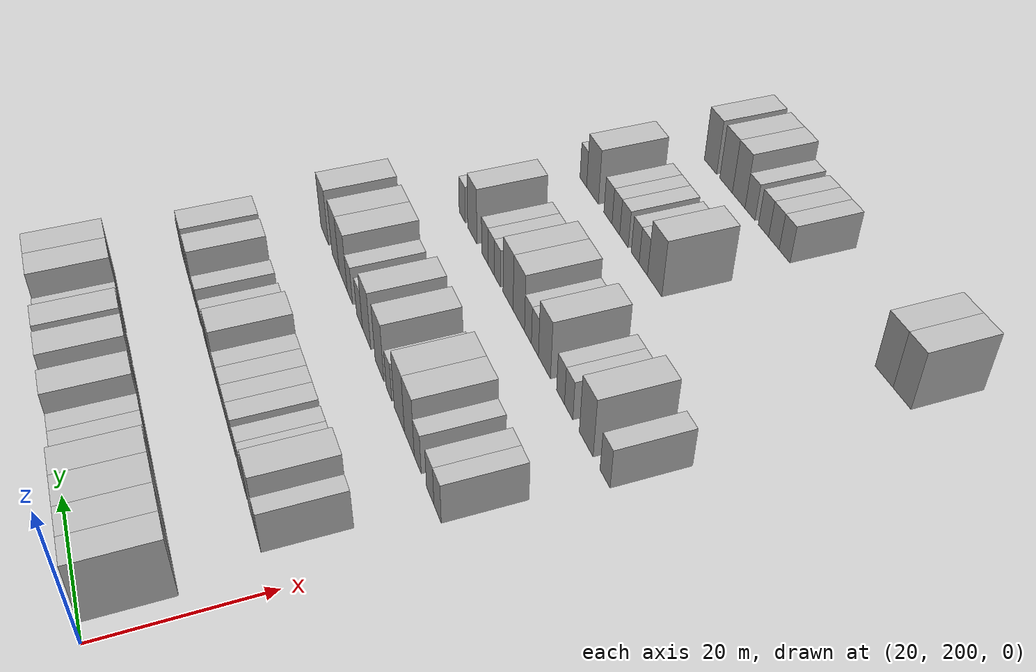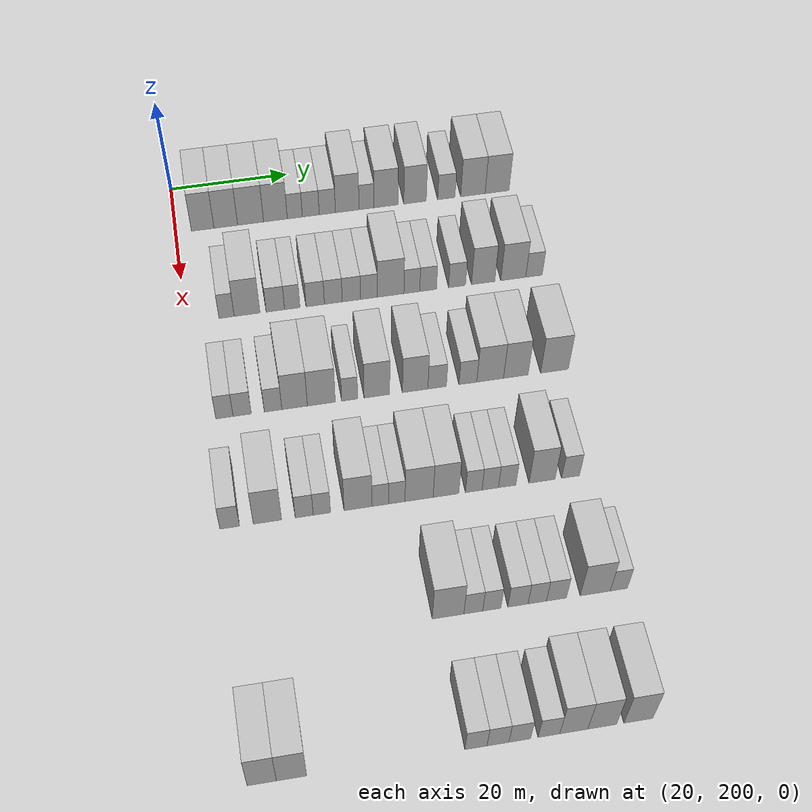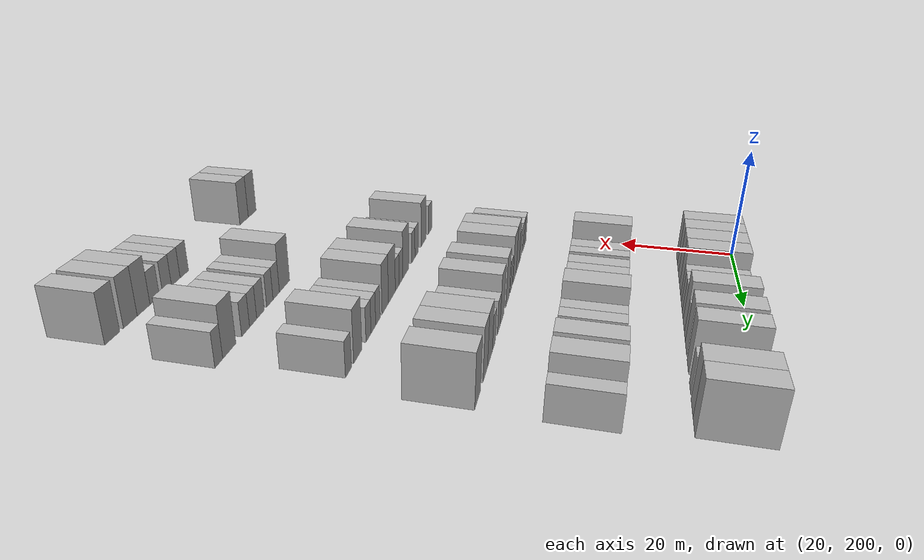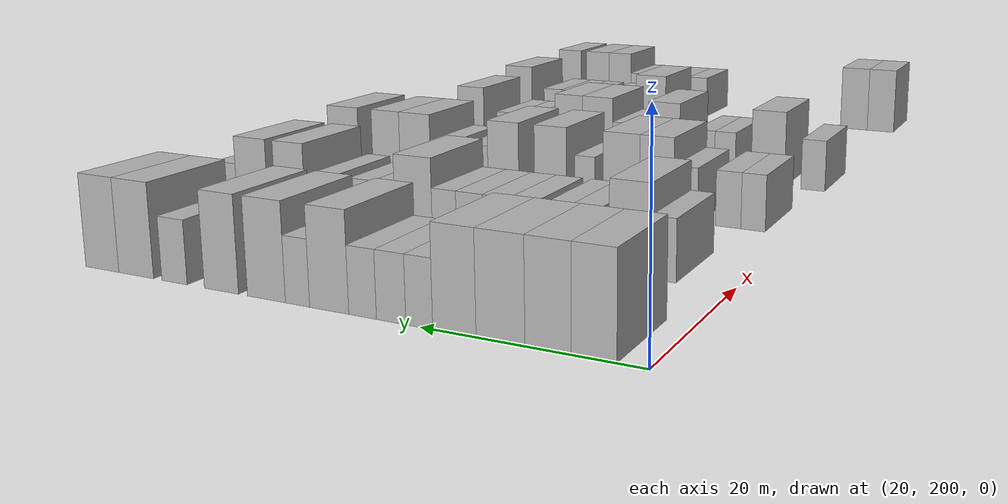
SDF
<sdf version="1.6">
 <world name="default">
  <model name="building_127">
   <static>1</static>
   <pose>25.0000 204.5269 0 0.000000 0.000000 0.000000</pose>
   <link name="link">
    <pose>0 0 4.50 0 0 0</pose>
    <collision name="collision"><geometry><box><size>10.0000 3.7907 9.0000</size></box></geometry></collision>
    <visual name="visual">
     <cast_shadows>0</cast_shadows>
     <geometry><box><size>10.0000 3.7907 9.0000</size></box></geometry>
     <material>
      <script>
       <uri>model://HANNAS_wall/materials/scripts</uri>
       <uri>model://HANNAS_wall/materials/textures</uri>
       <name>vrc/HANNAS_wall</name>
      </script>
     </material>
    </visual>
   </link>
  </model>
  <model name="building_128">
   <static>1</static>
   <pose>25.0000 208.4169 0 0.000000 0.000000 0.000000</pose>
   <link name="link">
    <pose>0 0 4.50 0 0 0</pose>
    <collision name="collision"><geometry><box><size>10.0000 3.9894 9.0000</size></box></geometry></collision>
    <visual name="visual">
     <cast_shadows>0</cast_shadows>
     <geometry><box><size>10.0000 3.9894 9.0000</size></box></geometry>
     <material>
      <script>
       <uri>model://HANNAS_wall/materials/scripts</uri>
       <uri>model://HANNAS_wall/materials/textures</uri>
       <name>vrc/HANNAS_wall</name>
      </script>
     </material>
    </visual>
   </link>
  </model>
  <model name="building_129">
   <static>1</static>
   <pose>25.0000 212.6016 0 0.000000 0.000000 0.000000</pose>
   <link name="link">
    <pose>0 0 4.50 0 0 0</pose>
    <collision name="collision"><geometry><box><size>10.0000 4.3799 9.0000</size></box></geometry></collision>
    <visual name="visual">
     <cast_shadows>0</cast_shadows>
     <geometry><box><size>10.0000 4.3799 9.0000</size></box></geometry>
     <material>
      <script>
       <uri>model://HANNAS_wall/materials/scripts</uri>
       <uri>model://HANNAS_wall/materials/textures</uri>
       <name>vrc/HANNAS_wall</name>
      </script>
     </material>
    </visual>
   </link>
  </model>
  <model name="building_130">
   <static>1</static>
   <pose>25.0000 216.8024 0 0.000000 0.000000 0.000000</pose>
   <link name="link">
    <pose>0 0 4.50 0 0 0</pose>
    <collision name="collision"><geometry><box><size>10.0000 4.0217 9.0000</size></box></geometry></collision>
    <visual name="visual">
     <cast_shadows>0</cast_shadows>
     <geometry><box><size>10.0000 4.0217 9.0000</size></box></geometry>
     <material>
      <script>
       <uri>model://HANNAS_wall/materials/scripts</uri>
       <uri>model://HANNAS_wall/materials/textures</uri>
       <name>vrc/HANNAS_wall</name>
      </script>
     </material>
    </visual>
   </link>
  </model>
  <model name="building_131">
   <static>1</static>
   <pose>25.0000 220.0942 0 0.000000 0.000000 0.000000</pose>
   <link name="link">
    <pose>0 0 3.00 0 0 0</pose>
    <collision name="collision"><geometry><box><size>10.0000 2.5620 6.0000</size></box></geometry></collision>
    <visual name="visual">
     <cast_shadows>0</cast_shadows>
     <geometry><box><size>10.0000 2.5620 6.0000</size></box></geometry>
     <material>
      <script>
       <uri>model://HANNAS_wall/materials/scripts</uri>
       <uri>model://HANNAS_wall/materials/textures</uri>
       <name>vrc/HANNAS_wall</name>
      </script>
     </material>
    </visual>
   </link>
  </model>
  <model name="building_132">
   <static>1</static>
   <pose>25.0000 222.8165 0 0.000000 0.000000 0.000000</pose>
   <link name="link">
    <pose>0 0 3.00 0 0 0</pose>
    <collision name="collision"><geometry><box><size>10.0000 2.8825 6.0000</size></box></geometry></collision>
    <visual name="visual">
     <cast_shadows>0</cast_shadows>
     <geometry><box><size>10.0000 2.8825 6.0000</size></box></geometry>
     <material>
      <script>
       <uri>model://HANNAS_wall/materials/scripts</uri>
       <uri>model://HANNAS_wall/materials/textures</uri>
       <name>vrc/HANNAS_wall</name>
      </script>
     </material>
    </visual>
   </link>
  </model>
  <model name="building_133">
   <static>1</static>
   <pose>25.0000 225.6451 0 0.000000 0.000000 0.000000</pose>
   <link name="link">
    <pose>0 0 3.00 0 0 0</pose>
    <collision name="collision"><geometry><box><size>10.0000 2.7747 6.0000</size></box></geometry></collision>
    <visual name="visual">
     <cast_shadows>0</cast_shadows>
     <geometry><box><size>10.0000 2.7747 6.0000</size></box></geometry>
     <material>
      <script>
       <uri>model://HANNAS_wall/materials/scripts</uri>
       <uri>model://HANNAS_wall/materials/textures</uri>
       <name>vrc/HANNAS_wall</name>
      </script>
     </material>
    </visual>
   </link>
  </model>
  <model name="building_134">
   <static>1</static>
   <pose>25.0000 229.0495 0 0.000000 0.000000 0.000000</pose>
   <link name="link">
    <pose>0 0 4.50 0 0 0</pose>
    <collision name="collision"><geometry><box><size>10.0000 4.0341 9.0000</size></box></geometry></collision>
    <visual name="visual">
     <cast_shadows>0</cast_shadows>
     <geometry><box><size>10.0000 4.0341 9.0000</size></box></geometry>
     <material>
      <script>
       <uri>model://HANNAS_wall/materials/scripts</uri>
       <uri>model://HANNAS_wall/materials/textures</uri>
       <name>vrc/HANNAS_wall</name>
      </script>
     </material>
    </visual>
   </link>
  </model>
  <model name="building_135">
   <static>1</static>
   <pose>25.0000 232.3501 0 0.000000 0.000000 0.000000</pose>
   <link name="link">
    <pose>0 0 3.00 0 0 0</pose>
    <collision name="collision"><geometry><box><size>10.0000 2.5670 6.0000</size></box></geometry></collision>
    <visual name="visual">
     <cast_shadows>0</cast_shadows>
     <geometry><box><size>10.0000 2.5670 6.0000</size></box></geometry>
     <material>
      <script>
       <uri>model://HANNAS_wall/materials/scripts</uri>
       <uri>model://HANNAS_wall/materials/textures</uri>
       <name>vrc/HANNAS_wall</name>
      </script>
     </material>
    </visual>
   </link>
  </model>
  <model name="building_136">
   <static>1</static>
   <pose>25.0000 235.6982 0 0.000000 0.000000 0.000000</pose>
   <link name="link">
    <pose>0 0 4.50 0 0 0</pose>
    <collision name="collision"><geometry><box><size>10.0000 4.1291 9.0000</size></box></geometry></collision>
    <visual name="visual">
     <cast_shadows>0</cast_shadows>
     <geometry><box><size>10.0000 4.1291 9.0000</size></box></geometry>
     <material>
      <script>
       <uri>model://HANNAS_wall/materials/scripts</uri>
       <uri>model://HANNAS_wall/materials/textures</uri>
       <name>vrc/HANNAS_wall</name>
      </script>
     </material>
    </visual>
   </link>
  </model>
  <model name="building_137">
   <static>1</static>
   <pose>25.0000 240.7015 0 0.000000 0.000000 0.000000</pose>
   <link name="link">
    <pose>0 0 4.50 0 0 0</pose>
    <collision name="collision"><geometry><box><size>10.0000 3.8776 9.0000</size></box></geometry></collision>
    <visual name="visual">
     <cast_shadows>0</cast_shadows>
     <geometry><box><size>10.0000 3.8776 9.0000</size></box></geometry>
     <material>
      <script>
       <uri>model://HANNAS_wall/materials/scripts</uri>
       <uri>model://HANNAS_wall/materials/textures</uri>
       <name>vrc/HANNAS_wall</name>
      </script>
     </material>
    </visual>
   </link>
  </model>
  <model name="building_138">
   <static>1</static>
   <pose>25.0000 246.1379 0 0.000000 0.000000 0.000000</pose>
   <link name="link">
    <pose>0 0 3.00 0 0 0</pose>
    <collision name="collision"><geometry><box><size>10.0000 2.9952 6.0000</size></box></geometry></collision>
    <visual name="visual">
     <cast_shadows>0</cast_shadows>
     <geometry><box><size>10.0000 2.9952 6.0000</size></box></geometry>
     <material>
      <script>
       <uri>model://HANNAS_wall/materials/scripts</uri>
       <uri>model://HANNAS_wall/materials/textures</uri>
       <name>vrc/HANNAS_wall</name>
      </script>
     </material>
    </visual>
   </link>
  </model>
  <model name="building_139">
   <static>1</static>
   <pose>25.0000 250.7669 0 0.000000 0.000000 0.000000</pose>
   <link name="link">
    <pose>0 0 4.50 0 0 0</pose>
    <collision name="collision"><geometry><box><size>10.0000 4.2628 9.0000</size></box></geometry></collision>
    <visual name="visual">
     <cast_shadows>0</cast_shadows>
     <geometry><box><size>10.0000 4.2628 9.0000</size></box></geometry>
     <material>
      <script>
       <uri>model://HANNAS_wall/materials/scripts</uri>
       <uri>model://HANNAS_wall/materials/textures</uri>
       <name>vrc/HANNAS_wall</name>
      </script>
     </material>
    </visual>
   </link>
  </model>
  <model name="building_140">
   <static>1</static>
   <pose>25.0000 254.9841 0 0.000000 0.000000 0.000000</pose>
   <link name="link">
    <pose>0 0 4.50 0 0 0</pose>
    <collision name="collision"><geometry><box><size>10.0000 4.1716 9.0000</size></box></geometry></collision>
    <visual name="visual">
     <cast_shadows>0</cast_shadows>
     <geometry><box><size>10.0000 4.1716 9.0000</size></box></geometry>
     <material>
      <script>
       <uri>model://HANNAS_wall/materials/scripts</uri>
       <uri>model://HANNAS_wall/materials/textures</uri>
       <name>vrc/HANNAS_wall</name>
      </script>
     </material>
    </visual>
   </link>
  </model>
  <model name="building_295">
   <static>1</static>
   <pose>44.0000 206.5396 0 0.000000 0.000000 0.000000</pose>
   <link name="link">
    <pose>0 0 3.00 0 0 0</pose>
    <collision name="collision"><geometry><box><size>10.0000 2.4375 6.0000</size></box></geometry></collision>
    <visual name="visual">
     <cast_shadows>0</cast_shadows>
     <geometry><box><size>10.0000 2.4375 6.0000</size></box></geometry>
     <material>
      <script>
       <uri>model://HANNAS_wall/materials/scripts</uri>
       <uri>model://HANNAS_wall/materials/textures</uri>
       <name>vrc/HANNAS_wall</name>
      </script>
     </material>
    </visual>
   </link>
  </model>
  <model name="building_296">
   <static>1</static>
   <pose>44.0000 209.8361 0 0.000000 0.000000 0.000000</pose>
   <link name="link">
    <pose>0 0 4.50 0 0 0</pose>
    <collision name="collision"><geometry><box><size>10.0000 4.1556 9.0000</size></box></geometry></collision>
    <visual name="visual">
     <cast_shadows>0</cast_shadows>
     <geometry><box><size>10.0000 4.1556 9.0000</size></box></geometry>
     <material>
      <script>
       <uri>model://HANNAS_wall/materials/scripts</uri>
       <uri>model://HANNAS_wall/materials/textures</uri>
       <name>vrc/HANNAS_wall</name>
      </script>
     </material>
    </visual>
   </link>
  </model>
  <model name="building_297">
   <static>1</static>
   <pose>44.0000 214.4067 0 0.000000 0.000000 0.000000</pose>
   <link name="link">
    <pose>0 0 3.00 0 0 0</pose>
    <collision name="collision"><geometry><box><size>10.0000 2.9856 6.0000</size></box></geometry></collision>
    <visual name="visual">
     <cast_shadows>0</cast_shadows>
     <geometry><box><size>10.0000 2.9856 6.0000</size></box></geometry>
     <material>
      <script>
       <uri>model://HANNAS_wall/materials/scripts</uri>
       <uri>model://HANNAS_wall/materials/textures</uri>
       <name>vrc/HANNAS_wall</name>
      </script>
     </material>
    </visual>
   </link>
  </model>
  <model name="building_298">
   <static>1</static>
   <pose>44.0000 217.1404 0 0.000000 0.000000 0.000000</pose>
   <link name="link">
    <pose>0 0 3.00 0 0 0</pose>
    <collision name="collision"><geometry><box><size>10.0000 2.4819 6.0000</size></box></geometry></collision>
    <visual name="visual">
     <cast_shadows>0</cast_shadows>
     <geometry><box><size>10.0000 2.4819 6.0000</size></box></geometry>
     <material>
      <script>
       <uri>model://HANNAS_wall/materials/scripts</uri>
       <uri>model://HANNAS_wall/materials/textures</uri>
       <name>vrc/HANNAS_wall</name>
      </script>
     </material>
    </visual>
   </link>
  </model>
  <model name="building_299">
   <static>1</static>
   <pose>44.0000 220.8739 0 0.000000 0.000000 0.000000</pose>
   <link name="link">
    <pose>0 0 3.00 0 0 0</pose>
    <collision name="collision"><geometry><box><size>10.0000 2.9849 6.0000</size></box></geometry></collision>
    <visual name="visual">
     <cast_shadows>0</cast_shadows>
     <geometry><box><size>10.0000 2.9849 6.0000</size></box></geometry>
     <material>
      <script>
       <uri>model://HANNAS_wall/materials/scripts</uri>
       <uri>model://HANNAS_wall/materials/textures</uri>
       <name>vrc/HANNAS_wall</name>
      </script>
     </material>
    </visual>
   </link>
  </model>
  <model name="building_300">
   <static>1</static>
   <pose>44.0000 223.8195 0 0.000000 0.000000 0.000000</pose>
   <link name="link">
    <pose>0 0 3.00 0 0 0</pose>
    <collision name="collision"><geometry><box><size>10.0000 2.9063 6.0000</size></box></geometry></collision>
    <visual name="visual">
     <cast_shadows>0</cast_shadows>
     <geometry><box><size>10.0000 2.9063 6.0000</size></box></geometry>
     <material>
      <script>
       <uri>model://HANNAS_wall/materials/scripts</uri>
       <uri>model://HANNAS_wall/materials/textures</uri>
       <name>vrc/HANNAS_wall</name>
      </script>
     </material>
    </visual>
   </link>
  </model>
  <model name="building_301">
   <static>1</static>
   <pose>44.0000 226.7684 0 0.000000 0.000000 0.000000</pose>
   <link name="link">
    <pose>0 0 3.00 0 0 0</pose>
    <collision name="collision"><geometry><box><size>10.0000 2.9915 6.0000</size></box></geometry></collision>
    <visual name="visual">
     <cast_shadows>0</cast_shadows>
     <geometry><box><size>10.0000 2.9915 6.0000</size></box></geometry>
     <material>
      <script>
       <uri>model://HANNAS_wall/materials/scripts</uri>
       <uri>model://HANNAS_wall/materials/textures</uri>
       <name>vrc/HANNAS_wall</name>
      </script>
     </material>
    </visual>
   </link>
  </model>
  <model name="building_302">
   <static>1</static>
   <pose>44.0000 229.6491 0 0.000000 0.000000 0.000000</pose>
   <link name="link">
    <pose>0 0 3.00 0 0 0</pose>
    <collision name="collision"><geometry><box><size>10.0000 2.7698 6.0000</size></box></geometry></collision>
    <visual name="visual">
     <cast_shadows>0</cast_shadows>
     <geometry><box><size>10.0000 2.7698 6.0000</size></box></geometry>
     <material>
      <script>
       <uri>model://HANNAS_wall/materials/scripts</uri>
       <uri>model://HANNAS_wall/materials/textures</uri>
       <name>vrc/HANNAS_wall</name>
      </script>
     </material>
    </visual>
   </link>
  </model>
  <model name="building_303">
   <static>1</static>
   <pose>44.0000 233.2140 0 0.000000 0.000000 0.000000</pose>
   <link name="link">
    <pose>0 0 4.50 0 0 0</pose>
    <collision name="collision"><geometry><box><size>10.0000 4.3600 9.0000</size></box></geometry></collision>
    <visual name="visual">
     <cast_shadows>0</cast_shadows>
     <geometry><box><size>10.0000 4.3600 9.0000</size></box></geometry>
     <material>
      <script>
       <uri>model://HANNAS_wall/materials/scripts</uri>
       <uri>model://HANNAS_wall/materials/textures</uri>
       <name>vrc/HANNAS_wall</name>
      </script>
     </material>
    </visual>
   </link>
  </model>
  <model name="building_304">
   <static>1</static>
   <pose>44.0000 236.6970 0 0.000000 0.000000 0.000000</pose>
   <link name="link">
    <pose>0 0 3.00 0 0 0</pose>
    <collision name="collision"><geometry><box><size>10.0000 2.6061 6.0000</size></box></geometry></collision>
    <visual name="visual">
     <cast_shadows>0</cast_shadows>
     <geometry><box><size>10.0000 2.6061 6.0000</size></box></geometry>
     <material>
      <script>
       <uri>model://HANNAS_wall/materials/scripts</uri>
       <uri>model://HANNAS_wall/materials/textures</uri>
       <name>vrc/HANNAS_wall</name>
      </script>
     </material>
    </visual>
   </link>
  </model>
  <model name="building_305">
   <static>1</static>
   <pose>44.0000 239.3837 0 0.000000 0.000000 0.000000</pose>
   <link name="link">
    <pose>0 0 3.00 0 0 0</pose>
    <collision name="collision"><geometry><box><size>10.0000 2.7674 6.0000</size></box></geometry></collision>
    <visual name="visual">
     <cast_shadows>0</cast_shadows>
     <geometry><box><size>10.0000 2.7674 6.0000</size></box></geometry>
     <material>
      <script>
       <uri>model://HANNAS_wall/materials/scripts</uri>
       <uri>model://HANNAS_wall/materials/textures</uri>
       <name>vrc/HANNAS_wall</name>
      </script>
     </material>
    </visual>
   </link>
  </model>
  <model name="building_306">
   <static>1</static>
   <pose>44.0000 244.1708 0 0.000000 0.000000 0.000000</pose>
   <link name="link">
    <pose>0 0 3.00 0 0 0</pose>
    <collision name="collision"><geometry><box><size>10.0000 2.8068 6.0000</size></box></geometry></collision>
    <visual name="visual">
     <cast_shadows>0</cast_shadows>
     <geometry><box><size>10.0000 2.8068 6.0000</size></box></geometry>
     <material>
      <script>
       <uri>model://HANNAS_wall/materials/scripts</uri>
       <uri>model://HANNAS_wall/materials/textures</uri>
       <name>vrc/HANNAS_wall</name>
      </script>
     </material>
    </visual>
   </link>
  </model>
  <model name="building_307">
   <static>1</static>
   <pose>44.0000 248.5184 0 0.000000 0.000000 0.000000</pose>
   <link name="link">
    <pose>0 0 4.50 0 0 0</pose>
    <collision name="collision"><geometry><box><size>10.0000 3.8883 9.0000</size></box></geometry></collision>
    <visual name="visual">
     <cast_shadows>0</cast_shadows>
     <geometry><box><size>10.0000 3.8883 9.0000</size></box></geometry>
     <material>
      <script>
       <uri>model://HANNAS_wall/materials/scripts</uri>
       <uri>model://HANNAS_wall/materials/textures</uri>
       <name>vrc/HANNAS_wall</name>
      </script>
     </material>
    </visual>
   </link>
  </model>
  <model name="building_308">
   <static>1</static>
   <pose>44.0000 253.5463 0 0.000000 0.000000 0.000000</pose>
   <link name="link">
    <pose>0 0 4.50 0 0 0</pose>
    <collision name="collision"><geometry><box><size>10.0000 4.1676 9.0000</size></box></geometry></collision>
    <visual name="visual">
     <cast_shadows>0</cast_shadows>
     <geometry><box><size>10.0000 4.1676 9.0000</size></box></geometry>
     <material>
      <script>
       <uri>model://HANNAS_wall/materials/scripts</uri>
       <uri>model://HANNAS_wall/materials/textures</uri>
       <name>vrc/HANNAS_wall</name>
      </script>
     </material>
    </visual>
   </link>
  </model>
  <model name="building_309">
   <static>1</static>
   <pose>44.0000 257.0165 0 0.000000 0.000000 0.000000</pose>
   <link name="link">
    <pose>0 0 3.00 0 0 0</pose>
    <collision name="collision"><geometry><box><size>10.0000 2.7727 6.0000</size></box></geometry></collision>
    <visual name="visual">
     <cast_shadows>0</cast_shadows>
     <geometry><box><size>10.0000 2.7727 6.0000</size></box></geometry>
     <material>
      <script>
       <uri>model://HANNAS_wall/materials/scripts</uri>
       <uri>model://HANNAS_wall/materials/textures</uri>
       <name>vrc/HANNAS_wall</name>
      </script>
     </material>
    </visual>
   </link>
  </model>
  <model name="building_470">
   <static>1</static>
   <pose>63.0000 204.2119 0 0.000000 0.000000 0.000000</pose>
   <link name="link">
    <pose>0 0 3.00 0 0 0</pose>
    <collision name="collision"><geometry><box><size>10.0000 2.6369 6.0000</size></box></geometry></collision>
    <visual name="visual">
     <cast_shadows>0</cast_shadows>
     <geometry><box><size>10.0000 2.6369 6.0000</size></box></geometry>
     <material>
      <script>
       <uri>model://HANNAS_wall/materials/scripts</uri>
       <uri>model://HANNAS_wall/materials/textures</uri>
       <name>vrc/HANNAS_wall</name>
      </script>
     </material>
    </visual>
   </link>
  </model>
  <model name="building_471">
   <static>1</static>
   <pose>63.0000 206.9260 0 0.000000 0.000000 0.000000</pose>
   <link name="link">
    <pose>0 0 3.00 0 0 0</pose>
    <collision name="collision"><geometry><box><size>10.0000 2.7912 6.0000</size></box></geometry></collision>
    <visual name="visual">
     <cast_shadows>0</cast_shadows>
     <geometry><box><size>10.0000 2.7912 6.0000</size></box></geometry>
     <material>
      <script>
       <uri>model://HANNAS_wall/materials/scripts</uri>
       <uri>model://HANNAS_wall/materials/textures</uri>
       <name>vrc/HANNAS_wall</name>
      </script>
     </material>
    </visual>
   </link>
  </model>
  <model name="building_472">
   <static>1</static>
   <pose>63.0000 211.6687 0 0.000000 0.000000 0.000000</pose>
   <link name="link">
    <pose>0 0 3.00 0 0 0</pose>
    <collision name="collision"><geometry><box><size>10.0000 2.6942 6.0000</size></box></geometry></collision>
    <visual name="visual">
     <cast_shadows>0</cast_shadows>
     <geometry><box><size>10.0000 2.6942 6.0000</size></box></geometry>
     <material>
      <script>
       <uri>model://HANNAS_wall/materials/scripts</uri>
       <uri>model://HANNAS_wall/materials/textures</uri>
       <name>vrc/HANNAS_wall</name>
      </script>
     </material>
    </visual>
   </link>
  </model>
  <model name="building_473">
   <static>1</static>
   <pose>63.0000 214.9931 0 0.000000 0.000000 0.000000</pose>
   <link name="link">
    <pose>0 0 4.50 0 0 0</pose>
    <collision name="collision"><geometry><box><size>10.0000 3.9545 9.0000</size></box></geometry></collision>
    <visual name="visual">
     <cast_shadows>0</cast_shadows>
     <geometry><box><size>10.0000 3.9545 9.0000</size></box></geometry>
     <material>
      <script>
       <uri>model://HANNAS_wall/materials/scripts</uri>
       <uri>model://HANNAS_wall/materials/textures</uri>
       <name>vrc/HANNAS_wall</name>
      </script>
     </material>
    </visual>
   </link>
  </model>
  <model name="building_474">
   <static>1</static>
   <pose>63.0000 219.1240 0 0.000000 0.000000 0.000000</pose>
   <link name="link">
    <pose>0 0 4.50 0 0 0</pose>
    <collision name="collision"><geometry><box><size>10.0000 4.3075 9.0000</size></box></geometry></collision>
    <visual name="visual">
     <cast_shadows>0</cast_shadows>
     <geometry><box><size>10.0000 4.3075 9.0000</size></box></geometry>
     <material>
      <script>
       <uri>model://HANNAS_wall/materials/scripts</uri>
       <uri>model://HANNAS_wall/materials/textures</uri>
       <name>vrc/HANNAS_wall</name>
      </script>
     </material>
    </visual>
   </link>
  </model>
  <model name="building_475">
   <static>1</static>
   <pose>63.0000 223.5188 0 0.000000 0.000000 0.000000</pose>
   <link name="link">
    <pose>0 0 3.00 0 0 0</pose>
    <collision name="collision"><geometry><box><size>10.0000 2.4821 6.0000</size></box></geometry></collision>
    <visual name="visual">
     <cast_shadows>0</cast_shadows>
     <geometry><box><size>10.0000 2.4821 6.0000</size></box></geometry>
     <material>
      <script>
       <uri>model://HANNAS_wall/materials/scripts</uri>
       <uri>model://HANNAS_wall/materials/textures</uri>
       <name>vrc/HANNAS_wall</name>
      </script>
     </material>
    </visual>
   </link>
  </model>
  <model name="building_476">
   <static>1</static>
   <pose>63.0000 227.7559 0 0.000000 0.000000 0.000000</pose>
   <link name="link">
    <pose>0 0 4.50 0 0 0</pose>
    <collision name="collision"><geometry><box><size>10.0000 3.9920 9.0000</size></box></geometry></collision>
    <visual name="visual">
     <cast_shadows>0</cast_shadows>
     <geometry><box><size>10.0000 3.9920 9.0000</size></box></geometry>
     <material>
      <script>
       <uri>model://HANNAS_wall/materials/scripts</uri>
       <uri>model://HANNAS_wall/materials/textures</uri>
       <name>vrc/HANNAS_wall</name>
      </script>
     </material>
    </visual>
   </link>
  </model>
  <model name="building_477">
   <static>1</static>
   <pose>63.0000 233.7527 0 0.000000 0.000000 0.000000</pose>
   <link name="link">
    <pose>0 0 4.50 0 0 0</pose>
    <collision name="collision"><geometry><box><size>10.0000 4.0016 9.0000</size></box></geometry></collision>
    <visual name="visual">
     <cast_shadows>0</cast_shadows>
     <geometry><box><size>10.0000 4.0016 9.0000</size></box></geometry>
     <material>
      <script>
       <uri>model://HANNAS_wall/materials/scripts</uri>
       <uri>model://HANNAS_wall/materials/textures</uri>
       <name>vrc/HANNAS_wall</name>
      </script>
     </material>
    </visual>
   </link>
  </model>
  <model name="building_478">
   <static>1</static>
   <pose>63.0000 237.2068 0 0.000000 0.000000 0.000000</pose>
   <link name="link">
    <pose>0 0 3.00 0 0 0</pose>
    <collision name="collision"><geometry><box><size>10.0000 2.9066 6.0000</size></box></geometry></collision>
    <visual name="visual">
     <cast_shadows>0</cast_shadows>
     <geometry><box><size>10.0000 2.9066 6.0000</size></box></geometry>
     <material>
      <script>
       <uri>model://HANNAS_wall/materials/scripts</uri>
       <uri>model://HANNAS_wall/materials/textures</uri>
       <name>vrc/HANNAS_wall</name>
      </script>
     </material>
    </visual>
   </link>
  </model>
  <model name="building_479">
   <static>1</static>
   <pose>63.0000 242.0679 0 0.000000 0.000000 0.000000</pose>
   <link name="link">
    <pose>0 0 3.00 0 0 0</pose>
    <collision name="collision"><geometry><box><size>10.0000 2.8156 6.0000</size></box></geometry></collision>
    <visual name="visual">
     <cast_shadows>0</cast_shadows>
     <geometry><box><size>10.0000 2.8156 6.0000</size></box></geometry>
     <material>
      <script>
       <uri>model://HANNAS_wall/materials/scripts</uri>
       <uri>model://HANNAS_wall/materials/textures</uri>
       <name>vrc/HANNAS_wall</name>
      </script>
     </material>
    </visual>
   </link>
  </model>
  <model name="building_480">
   <static>1</static>
   <pose>63.0000 245.5967 0 0.000000 0.000000 0.000000</pose>
   <link name="link">
    <pose>0 0 4.50 0 0 0</pose>
    <collision name="collision"><geometry><box><size>10.0000 4.2419 9.0000</size></box></geometry></collision>
    <visual name="visual">
     <cast_shadows>0</cast_shadows>
     <geometry><box><size>10.0000 4.2419 9.0000</size></box></geometry>
     <material>
      <script>
       <uri>model://HANNAS_wall/materials/scripts</uri>
       <uri>model://HANNAS_wall/materials/textures</uri>
       <name>vrc/HANNAS_wall</name>
      </script>
     </material>
    </visual>
   </link>
  </model>
  <model name="building_481">
   <static>1</static>
   <pose>63.0000 249.6696 0 0.000000 0.000000 0.000000</pose>
   <link name="link">
    <pose>0 0 4.50 0 0 0</pose>
    <collision name="collision"><geometry><box><size>10.0000 3.9040 9.0000</size></box></geometry></collision>
    <visual name="visual">
     <cast_shadows>0</cast_shadows>
     <geometry><box><size>10.0000 3.9040 9.0000</size></box></geometry>
     <material>
      <script>
       <uri>model://HANNAS_wall/materials/scripts</uri>
       <uri>model://HANNAS_wall/materials/textures</uri>
       <name>vrc/HANNAS_wall</name>
      </script>
     </material>
    </visual>
   </link>
  </model>
  <model name="building_482">
   <static>1</static>
   <pose>63.0000 255.8370 0 0.000000 0.000000 0.000000</pose>
   <link name="link">
    <pose>0 0 4.50 0 0 0</pose>
    <collision name="collision"><geometry><box><size>10.0000 4.4309 9.0000</size></box></geometry></collision>
    <visual name="visual">
     <cast_shadows>0</cast_shadows>
     <geometry><box><size>10.0000 4.4309 9.0000</size></box></geometry>
     <material>
      <script>
       <uri>model://HANNAS_wall/materials/scripts</uri>
       <uri>model://HANNAS_wall/materials/textures</uri>
       <name>vrc/HANNAS_wall</name>
      </script>
     </material>
    </visual>
   </link>
  </model>
  <model name="building_650">
   <static>1</static>
   <pose>82.0000 202.9773 0 0.000000 0.000000 0.000000</pose>
   <link name="link">
    <pose>0 0 3.00 0 0 0</pose>
    <collision name="collision"><geometry><box><size>10.0000 2.8627 6.0000</size></box></geometry></collision>
    <visual name="visual">
     <cast_shadows>0</cast_shadows>
     <geometry><box><size>10.0000 2.8627 6.0000</size></box></geometry>
     <material>
      <script>
       <uri>model://HANNAS_wall/materials/scripts</uri>
       <uri>model://HANNAS_wall/materials/textures</uri>
       <name>vrc/HANNAS_wall</name>
      </script>
     </material>
    </visual>
   </link>
  </model>
  <model name="building_651">
   <static>1</static>
   <pose>82.0000 208.4746 0 0.000000 0.000000 0.000000</pose>
   <link name="link">
    <pose>0 0 4.50 0 0 0</pose>
    <collision name="collision"><geometry><box><size>10.0000 4.1319 9.0000</size></box></geometry></collision>
    <visual name="visual">
     <cast_shadows>0</cast_shadows>
     <geometry><box><size>10.0000 4.1319 9.0000</size></box></geometry>
     <material>
      <script>
       <uri>model://HANNAS_wall/materials/scripts</uri>
       <uri>model://HANNAS_wall/materials/textures</uri>
       <name>vrc/HANNAS_wall</name>
      </script>
     </material>
    </visual>
   </link>
  </model>
  <model name="building_652">
   <static>1</static>
   <pose>82.0000 213.8582 0 0.000000 0.000000 0.000000</pose>
   <link name="link">
    <pose>0 0 3.00 0 0 0</pose>
    <collision name="collision"><geometry><box><size>10.0000 2.6354 6.0000</size></box></geometry></collision>
    <visual name="visual">
     <cast_shadows>0</cast_shadows>
     <geometry><box><size>10.0000 2.6354 6.0000</size></box></geometry>
     <material>
      <script>
       <uri>model://HANNAS_wall/materials/scripts</uri>
       <uri>model://HANNAS_wall/materials/textures</uri>
       <name>vrc/HANNAS_wall</name>
      </script>
     </material>
    </visual>
   </link>
  </model>
  <model name="building_653">
   <static>1</static>
   <pose>82.0000 216.4502 0 0.000000 0.000000 0.000000</pose>
   <link name="link">
    <pose>0 0 3.00 0 0 0</pose>
    <collision name="collision"><geometry><box><size>10.0000 2.5486 6.0000</size></box></geometry></collision>
    <visual name="visual">
     <cast_shadows>0</cast_shadows>
     <geometry><box><size>10.0000 2.5486 6.0000</size></box></geometry>
     <material>
      <script>
       <uri>model://HANNAS_wall/materials/scripts</uri>
       <uri>model://HANNAS_wall/materials/textures</uri>
       <name>vrc/HANNAS_wall</name>
      </script>
     </material>
    </visual>
   </link>
  </model>
  <model name="building_654">
   <static>1</static>
   <pose>82.0000 221.7746 0 0.000000 0.000000 0.000000</pose>
   <link name="link">
    <pose>0 0 4.50 0 0 0</pose>
    <collision name="collision"><geometry><box><size>10.0000 4.1003 9.0000</size></box></geometry></collision>
    <visual name="visual">
     <cast_shadows>0</cast_shadows>
     <geometry><box><size>10.0000 4.1003 9.0000</size></box></geometry>
     <material>
      <script>
       <uri>model://HANNAS_wall/materials/scripts</uri>
       <uri>model://HANNAS_wall/materials/textures</uri>
       <name>vrc/HANNAS_wall</name>
      </script>
     </material>
    </visual>
   </link>
  </model>
  <model name="building_655">
   <static>1</static>
   <pose>82.0000 225.0524 0 0.000000 0.000000 0.000000</pose>
   <link name="link">
    <pose>0 0 3.00 0 0 0</pose>
    <collision name="collision"><geometry><box><size>10.0000 2.4551 6.0000</size></box></geometry></collision>
    <visual name="visual">
     <cast_shadows>0</cast_shadows>
     <geometry><box><size>10.0000 2.4551 6.0000</size></box></geometry>
     <material>
      <script>
       <uri>model://HANNAS_wall/materials/scripts</uri>
       <uri>model://HANNAS_wall/materials/textures</uri>
       <name>vrc/HANNAS_wall</name>
      </script>
     </material>
    </visual>
   </link>
  </model>
  <model name="building_656">
   <static>1</static>
   <pose>82.0000 227.5114 0 0.000000 0.000000 0.000000</pose>
   <link name="link">
    <pose>0 0 3.00 0 0 0</pose>
    <collision name="collision"><geometry><box><size>10.0000 2.4631 6.0000</size></box></geometry></collision>
    <visual name="visual">
     <cast_shadows>0</cast_shadows>
     <geometry><box><size>10.0000 2.4631 6.0000</size></box></geometry>
     <material>
      <script>
       <uri>model://HANNAS_wall/materials/scripts</uri>
       <uri>model://HANNAS_wall/materials/textures</uri>
       <name>vrc/HANNAS_wall</name>
      </script>
     </material>
    </visual>
   </link>
  </model>
  <model name="building_657">
   <static>1</static>
   <pose>82.0000 230.8454 0 0.000000 0.000000 0.000000</pose>
   <link name="link">
    <pose>0 0 4.50 0 0 0</pose>
    <collision name="collision"><geometry><box><size>10.0000 4.2048 9.0000</size></box></geometry></collision>
    <visual name="visual">
     <cast_shadows>0</cast_shadows>
     <geometry><box><size>10.0000 4.2048 9.0000</size></box></geometry>
     <material>
      <script>
       <uri>model://HANNAS_wall/materials/scripts</uri>
       <uri>model://HANNAS_wall/materials/textures</uri>
       <name>vrc/HANNAS_wall</name>
      </script>
     </material>
    </visual>
   </link>
  </model>
  <model name="building_658">
   <static>1</static>
   <pose>82.0000 234.8639 0 0.000000 0.000000 0.000000</pose>
   <link name="link">
    <pose>0 0 4.50 0 0 0</pose>
    <collision name="collision"><geometry><box><size>10.0000 3.8322 9.0000</size></box></geometry></collision>
    <visual name="visual">
     <cast_shadows>0</cast_shadows>
     <geometry><box><size>10.0000 3.8322 9.0000</size></box></geometry>
     <material>
      <script>
       <uri>model://HANNAS_wall/materials/scripts</uri>
       <uri>model://HANNAS_wall/materials/textures</uri>
       <name>vrc/HANNAS_wall</name>
      </script>
     </material>
    </visual>
   </link>
  </model>
  <model name="building_659">
   <static>1</static>
   <pose>82.0000 239.0289 0 0.000000 0.000000 0.000000</pose>
   <link name="link">
    <pose>0 0 3.00 0 0 0</pose>
    <collision name="collision"><geometry><box><size>10.0000 2.4978 6.0000</size></box></geometry></collision>
    <visual name="visual">
     <cast_shadows>0</cast_shadows>
     <geometry><box><size>10.0000 2.4978 6.0000</size></box></geometry>
     <material>
      <script>
       <uri>model://HANNAS_wall/materials/scripts</uri>
       <uri>model://HANNAS_wall/materials/textures</uri>
       <name>vrc/HANNAS_wall</name>
      </script>
     </material>
    </visual>
   </link>
  </model>
  <model name="building_660">
   <static>1</static>
   <pose>82.0000 241.5190 0 0.000000 0.000000 0.000000</pose>
   <link name="link">
    <pose>0 0 3.00 0 0 0</pose>
    <collision name="collision"><geometry><box><size>10.0000 2.4825 6.0000</size></box></geometry></collision>
    <visual name="visual">
     <cast_shadows>0</cast_shadows>
     <geometry><box><size>10.0000 2.4825 6.0000</size></box></geometry>
     <material>
      <script>
       <uri>model://HANNAS_wall/materials/scripts</uri>
       <uri>model://HANNAS_wall/materials/textures</uri>
       <name>vrc/HANNAS_wall</name>
      </script>
     </material>
    </visual>
   </link>
  </model>
  <model name="building_661">
   <static>1</static>
   <pose>82.0000 244.0648 0 0.000000 0.000000 0.000000</pose>
   <link name="link">
    <pose>0 0 3.00 0 0 0</pose>
    <collision name="collision"><geometry><box><size>10.0000 2.6093 6.0000</size></box></geometry></collision>
    <visual name="visual">
     <cast_shadows>0</cast_shadows>
     <geometry><box><size>10.0000 2.6093 6.0000</size></box></geometry>
     <material>
      <script>
       <uri>model://HANNAS_wall/materials/scripts</uri>
       <uri>model://HANNAS_wall/materials/textures</uri>
       <name>vrc/HANNAS_wall</name>
      </script>
     </material>
    </visual>
   </link>
  </model>
  <model name="building_662">
   <static>1</static>
   <pose>82.0000 249.3446 0 0.000000 0.000000 0.000000</pose>
   <link name="link">
    <pose>0 0 4.50 0 0 0</pose>
    <collision name="collision"><geometry><box><size>10.0000 3.9502 9.0000</size></box></geometry></collision>
    <visual name="visual">
     <cast_shadows>0</cast_shadows>
     <geometry><box><size>10.0000 3.9502 9.0000</size></box></geometry>
     <material>
      <script>
       <uri>model://HANNAS_wall/materials/scripts</uri>
       <uri>model://HANNAS_wall/materials/textures</uri>
       <name>vrc/HANNAS_wall</name>
      </script>
     </material>
    </visual>
   </link>
  </model>
  <model name="building_663">
   <static>1</static>
   <pose>82.0000 253.6759 0 0.000000 0.000000 0.000000</pose>
   <link name="link">
    <pose>0 0 3.00 0 0 0</pose>
    <collision name="collision"><geometry><box><size>10.0000 2.7123 6.0000</size></box></geometry></collision>
    <visual name="visual">
     <cast_shadows>0</cast_shadows>
     <geometry><box><size>10.0000 2.7123 6.0000</size></box></geometry>
     <material>
      <script>
       <uri>model://HANNAS_wall/materials/scripts</uri>
       <uri>model://HANNAS_wall/materials/textures</uri>
       <name>vrc/HANNAS_wall</name>
      </script>
     </material>
    </visual>
   </link>
  </model>
  <model name="building_814">
   <static>1</static>
   <pose>101.0000 231.4290 0 0.000000 0.000000 0.000000</pose>
   <link name="link">
    <pose>0 0 4.50 0 0 0</pose>
    <collision name="collision"><geometry><box><size>10.0000 4.4885 9.0000</size></box></geometry></collision>
    <visual name="visual">
     <cast_shadows>0</cast_shadows>
     <geometry><box><size>10.0000 4.4885 9.0000</size></box></geometry>
     <material>
      <script>
       <uri>model://HANNAS_wall/materials/scripts</uri>
       <uri>model://HANNAS_wall/materials/textures</uri>
       <name>vrc/HANNAS_wall</name>
      </script>
     </material>
    </visual>
   </link>
  </model>
  <model name="building_815">
   <static>1</static>
   <pose>101.0000 235.0155 0 0.000000 0.000000 0.000000</pose>
   <link name="link">
    <pose>0 0 3.00 0 0 0</pose>
    <collision name="collision"><geometry><box><size>10.0000 2.6846 6.0000</size></box></geometry></collision>
    <visual name="visual">
     <cast_shadows>0</cast_shadows>
     <geometry><box><size>10.0000 2.6846 6.0000</size></box></geometry>
     <material>
      <script>
       <uri>model://HANNAS_wall/materials/scripts</uri>
       <uri>model://HANNAS_wall/materials/textures</uri>
       <name>vrc/HANNAS_wall</name>
      </script>
     </material>
    </visual>
   </link>
  </model>
  <model name="building_816">
   <static>1</static>
   <pose>101.0000 237.6453 0 0.000000 0.000000 0.000000</pose>
   <link name="link">
    <pose>0 0 3.00 0 0 0</pose>
    <collision name="collision"><geometry><box><size>10.0000 2.5750 6.0000</size></box></geometry></collision>
    <visual name="visual">
     <cast_shadows>0</cast_shadows>
     <geometry><box><size>10.0000 2.5750 6.0000</size></box></geometry>
     <material>
      <script>
       <uri>model://HANNAS_wall/materials/scripts</uri>
       <uri>model://HANNAS_wall/materials/textures</uri>
       <name>vrc/HANNAS_wall</name>
      </script>
     </material>
    </visual>
   </link>
  </model>
  <model name="building_817">
   <static>1</static>
   <pose>101.0000 241.3774 0 0.000000 0.000000 0.000000</pose>
   <link name="link">
    <pose>0 0 3.00 0 0 0</pose>
    <collision name="collision"><geometry><box><size>10.0000 2.8893 6.0000</size></box></geometry></collision>
    <visual name="visual">
     <cast_shadows>0</cast_shadows>
     <geometry><box><size>10.0000 2.8893 6.0000</size></box></geometry>
     <material>
      <script>
       <uri>model://HANNAS_wall/materials/scripts</uri>
       <uri>model://HANNAS_wall/materials/textures</uri>
       <name>vrc/HANNAS_wall</name>
      </script>
     </material>
    </visual>
   </link>
  </model>
  <model name="building_818">
   <static>1</static>
   <pose>101.0000 244.1462 0 0.000000 0.000000 0.000000</pose>
   <link name="link">
    <pose>0 0 3.00 0 0 0</pose>
    <collision name="collision"><geometry><box><size>10.0000 2.6484 6.0000</size></box></geometry></collision>
    <visual name="visual">
     <cast_shadows>0</cast_shadows>
     <geometry><box><size>10.0000 2.6484 6.0000</size></box></geometry>
     <material>
      <script>
       <uri>model://HANNAS_wall/materials/scripts</uri>
       <uri>model://HANNAS_wall/materials/textures</uri>
       <name>vrc/HANNAS_wall</name>
      </script>
     </material>
    </visual>
   </link>
  </model>
  <model name="building_819">
   <static>1</static>
   <pose>101.0000 246.8996 0 0.000000 0.000000 0.000000</pose>
   <link name="link">
    <pose>0 0 3.00 0 0 0</pose>
    <collision name="collision"><geometry><box><size>10.0000 2.8584 6.0000</size></box></geometry></collision>
    <visual name="visual">
     <cast_shadows>0</cast_shadows>
     <geometry><box><size>10.0000 2.8584 6.0000</size></box></geometry>
     <material>
      <script>
       <uri>model://HANNAS_wall/materials/scripts</uri>
       <uri>model://HANNAS_wall/materials/textures</uri>
       <name>vrc/HANNAS_wall</name>
      </script>
     </material>
    </visual>
   </link>
  </model>
  <model name="building_820">
   <static>1</static>
   <pose>101.0000 252.5022 0 0.000000 0.000000 0.000000</pose>
   <link name="link">
    <pose>0 0 4.50 0 0 0</pose>
    <collision name="collision"><geometry><box><size>10.0000 4.3466 9.0000</size></box></geometry></collision>
    <visual name="visual">
     <cast_shadows>0</cast_shadows>
     <geometry><box><size>10.0000 4.3466 9.0000</size></box></geometry>
     <material>
      <script>
       <uri>model://HANNAS_wall/materials/scripts</uri>
       <uri>model://HANNAS_wall/materials/textures</uri>
       <name>vrc/HANNAS_wall</name>
      </script>
     </material>
    </visual>
   </link>
  </model>
  <model name="building_821">
   <static>1</static>
   <pose>101.0000 255.9162 0 0.000000 0.000000 0.000000</pose>
   <link name="link">
    <pose>0 0 3.00 0 0 0</pose>
    <collision name="collision"><geometry><box><size>10.0000 2.4813 6.0000</size></box></geometry></collision>
    <visual name="visual">
     <cast_shadows>0</cast_shadows>
     <geometry><box><size>10.0000 2.4813 6.0000</size></box></geometry>
     <material>
      <script>
       <uri>model://HANNAS_wall/materials/scripts</uri>
       <uri>model://HANNAS_wall/materials/textures</uri>
       <name>vrc/HANNAS_wall</name>
      </script>
     </material>
    </visual>
   </link>
  </model>
  <model name="building_988">
   <static>1</static>
   <pose>120.0000 203.0923 0 0.000000 0.000000 0.000000</pose>
   <link name="link">
    <pose>0 0 4.50 0 0 0</pose>
    <collision name="collision"><geometry><box><size>10.0000 3.8180 9.0000</size></box></geometry></collision>
    <visual name="visual">
     <cast_shadows>0</cast_shadows>
     <geometry><box><size>10.0000 3.8180 9.0000</size></box></geometry>
     <material>
      <script>
       <uri>model://HANNAS_wall/materials/scripts</uri>
       <uri>model://HANNAS_wall/materials/textures</uri>
       <name>vrc/HANNAS_wall</name>
      </script>
     </material>
    </visual>
   </link>
  </model>
  <model name="building_989">
   <static>1</static>
   <pose>120.0000 206.9763 0 0.000000 0.000000 0.000000</pose>
   <link name="link">
    <pose>0 0 4.50 0 0 0</pose>
    <collision name="collision"><geometry><box><size>10.0000 3.9501 9.0000</size></box></geometry></collision>
    <visual name="visual">
     <cast_shadows>0</cast_shadows>
     <geometry><box><size>10.0000 3.9501 9.0000</size></box></geometry>
     <material>
      <script>
       <uri>model://HANNAS_wall/materials/scripts</uri>
       <uri>model://HANNAS_wall/materials/textures</uri>
       <name>vrc/HANNAS_wall</name>
      </script>
     </material>
    </visual>
   </link>
  </model>
  <model name="building_990">
   <static>1</static>
   <pose>120.0000 231.4065 0 0.000000 0.000000 0.000000</pose>
   <link name="link">
    <pose>0 0 3.00 0 0 0</pose>
    <collision name="collision"><geometry><box><size>10.0000 2.9701 6.0000</size></box></geometry></collision>
    <visual name="visual">
     <cast_shadows>0</cast_shadows>
     <geometry><box><size>10.0000 2.9701 6.0000</size></box></geometry>
     <material>
      <script>
       <uri>model://HANNAS_wall/materials/scripts</uri>
       <uri>model://HANNAS_wall/materials/textures</uri>
       <name>vrc/HANNAS_wall</name>
      </script>
     </material>
    </visual>
   </link>
  </model>
  <model name="building_991">
   <static>1</static>
   <pose>120.0000 234.3655 0 0.000000 0.000000 0.000000</pose>
   <link name="link">
    <pose>0 0 3.00 0 0 0</pose>
    <collision name="collision"><geometry><box><size>10.0000 2.9478 6.0000</size></box></geometry></collision>
    <visual name="visual">
     <cast_shadows>0</cast_shadows>
     <geometry><box><size>10.0000 2.9478 6.0000</size></box></geometry>
     <material>
      <script>
       <uri>model://HANNAS_wall/materials/scripts</uri>
       <uri>model://HANNAS_wall/materials/textures</uri>
       <name>vrc/HANNAS_wall</name>
      </script>
     </material>
    </visual>
   </link>
  </model>
  <model name="building_992">
   <static>1</static>
   <pose>120.0000 237.3022 0 0.000000 0.000000 0.000000</pose>
   <link name="link">
    <pose>0 0 3.00 0 0 0</pose>
    <collision name="collision"><geometry><box><size>10.0000 2.9256 6.0000</size></box></geometry></collision>
    <visual name="visual">
     <cast_shadows>0</cast_shadows>
     <geometry><box><size>10.0000 2.9256 6.0000</size></box></geometry>
     <material>
      <script>
       <uri>model://HANNAS_wall/materials/scripts</uri>
       <uri>model://HANNAS_wall/materials/textures</uri>
       <name>vrc/HANNAS_wall</name>
      </script>
     </material>
    </visual>
   </link>
  </model>
  <model name="building_993">
   <static>1</static>
   <pose>120.0000 241.2407 0 0.000000 0.000000 0.000000</pose>
   <link name="link">
    <pose>0 0 3.00 0 0 0</pose>
    <collision name="collision"><geometry><box><size>10.0000 2.9514 6.0000</size></box></geometry></collision>
    <visual name="visual">
     <cast_shadows>0</cast_shadows>
     <geometry><box><size>10.0000 2.9514 6.0000</size></box></geometry>
     <material>
      <script>
       <uri>model://HANNAS_wall/materials/scripts</uri>
       <uri>model://HANNAS_wall/materials/textures</uri>
       <name>vrc/HANNAS_wall</name>
      </script>
     </material>
    </visual>
   </link>
  </model>
  <model name="building_994">
   <static>1</static>
   <pose>120.0000 244.6254 0 0.000000 0.000000 0.000000</pose>
   <link name="link">
    <pose>0 0 4.50 0 0 0</pose>
    <collision name="collision"><geometry><box><size>10.0000 3.8181 9.0000</size></box></geometry></collision>
    <visual name="visual">
     <cast_shadows>0</cast_shadows>
     <geometry><box><size>10.0000 3.8181 9.0000</size></box></geometry>
     <material>
      <script>
       <uri>model://HANNAS_wall/materials/scripts</uri>
       <uri>model://HANNAS_wall/materials/textures</uri>
       <name>vrc/HANNAS_wall</name>
      </script>
     </material>
    </visual>
   </link>
  </model>
  <model name="building_995">
   <static>1</static>
   <pose>120.0000 248.5003 0 0.000000 0.000000 0.000000</pose>
   <link name="link">
    <pose>0 0 4.50 0 0 0</pose>
    <collision name="collision"><geometry><box><size>10.0000 3.9316 9.0000</size></box></geometry></collision>
    <visual name="visual">
     <cast_shadows>0</cast_shadows>
     <geometry><box><size>10.0000 3.9316 9.0000</size></box></geometry>
     <material>
      <script>
       <uri>model://HANNAS_wall/materials/scripts</uri>
       <uri>model://HANNAS_wall/materials/textures</uri>
       <name>vrc/HANNAS_wall</name>
      </script>
     </material>
    </visual>
   </link>
  </model>
  <model name="building_996">
   <static>1</static>
   <pose>120.0000 253.4574 0 0.000000 0.000000 0.000000</pose>
   <link name="link">
    <pose>0 0 4.50 0 0 0</pose>
    <collision name="collision"><geometry><box><size>10.0000 3.9826 9.0000</size></box></geometry></collision>
    <visual name="visual">
     <cast_shadows>0</cast_shadows>
     <geometry><box><size>10.0000 3.9826 9.0000</size></box></geometry>
     <material>
      <script>
       <uri>model://HANNAS_wall/materials/scripts</uri>
       <uri>model://HANNAS_wall/materials/textures</uri>
       <name>vrc/HANNAS_wall</name>
      </script>
     </material>
    </visual>
   </link>
  </model>
 </world>
</sdf>
